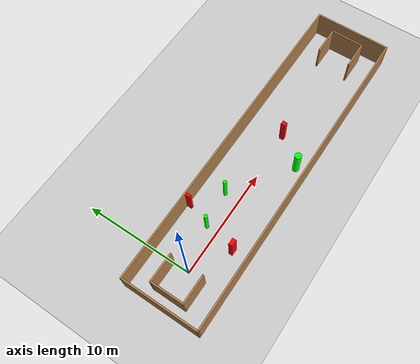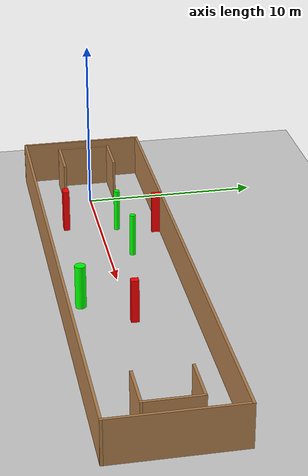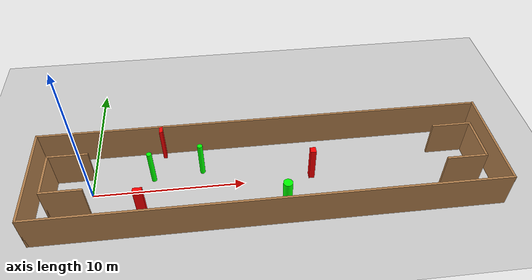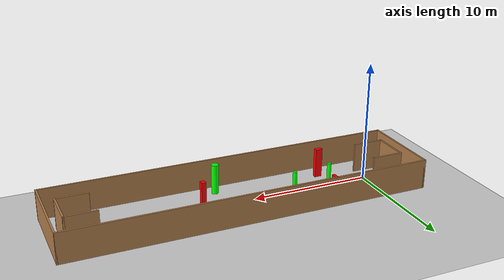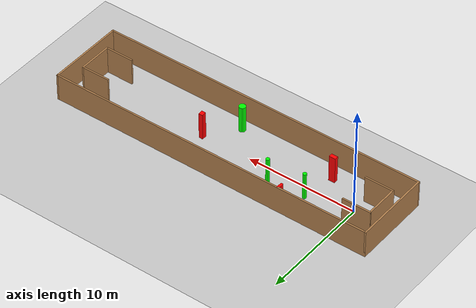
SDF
<sdf version="1.7">
 <world name="default">
  <light name="sun" type="directional">
   <pose>0 0 10 0 -0 0</pose>
   <diffuse>0.8 0.8 0.8 1</diffuse>
   <specular>0.2 0.2 0.2 1</specular>
   <attenuation>
    <range>1000</range>
    <constant>0.9</constant>
    <linear>0.01</linear>
    <quadratic>0.001</quadratic>
   </attenuation>
   <direction>-0.5 0.1 -0.9</direction>
   <spot><inner_angle>0</inner_angle><outer_angle>0</outer_angle><falloff>0</falloff></spot>
  </light>
  <model name="ground_plane">
   <static>1</static>
   <link name="link">
    <collision name="collision">
     <geometry><plane><normal>0 0 1</normal><size>100 100</size></plane></geometry>
     <surface>
      <contact><collide_bitmask>65535</collide_bitmask></contact>
      <friction><ode><mu>100</mu><mu2>50</mu2></ode></friction>
     </surface>
    </collision>
    <visual name="visual">
     <cast_shadows>0</cast_shadows>
     <geometry><plane><normal>0 0 1</normal><size>100 100</size></plane></geometry>
     <material>
      <script><uri>file://media/materials/scripts/gazebo.material</uri><name>Gazebo/Grey</name></script>
     </material>
    </visual>
   </link>
  </model>
  <gravity>0 0 -9.8</gravity>
  <magnetic_field>6e-06 2.3e-05 -4.2e-05</magnetic_field>
  <atmosphere type="adiabatic"/>
  <physics type="ode">
   <max_step_size>0.001</max_step_size>
   <real_time_factor>1</real_time_factor>
   <real_time_update_rate>1000</real_time_update_rate>
  </physics>
  <scene><ambient>0.4 0.4 0.4 1</ambient><background>0.7 0.7 0.7 1</background><shadows>1</shadows></scene>
  <spherical_coordinates>
   <surface_model>EARTH_WGS84</surface_model>
   <latitude_deg>0</latitude_deg>
   <longitude_deg>0</longitude_deg>
   <elevation>0</elevation>
   <heading_deg>0</heading_deg>
  </spherical_coordinates>
  <model name="my_base_walls">
   <link name="Wall_0">
    <collision name="Wall_0_Collision">
     <geometry><box><size>7.15 0.15 2.5</size></box></geometry>
     <pose>0 0 1.25 0 -0 0</pose>
    </collision>
    <visual name="Wall_0_Visual">
     <pose>0 0 1.25 0 -0 0</pose>
     <geometry><box><size>7.15 0.15 2.5</size></box></geometry>
     <material>
      <script><uri>file://media/materials/scripts/gazebo.material</uri><name>Gazebo/Wood</name></script>
      <ambient>1 1 1 1</ambient>
     </material>
     <meta><layer>0</layer></meta>
    </visual>
    <pose>-15 0 0 0 -0 1.5708</pose>
   </link>
   <link name="Wall_10">
    <collision name="Wall_10_Collision">
     <geometry><box><size>2.65 0.15 2.5</size></box></geometry>
     <pose>0 0 1.25 0 -0 0</pose>
    </collision>
    <visual name="Wall_10_Visual">
     <pose>0 0 1.25 0 -0 0</pose>
     <geometry><box><size>2.65 0.15 2.5</size></box></geometry>
     <material>
      <script><uri>file://media/materials/scripts/gazebo.material</uri><name>Gazebo/Wood</name></script>
      <ambient>1 1 1 1</ambient>
     </material>
     <meta><layer>0</layer></meta>
    </visual>
    <pose>-12.75 -1.5 0 0 -0 0</pose>
   </link>
   <link name="Wall_12">
    <collision name="Wall_12_Collision">
     <geometry><box><size>2.65 0.15 2.5</size></box></geometry>
     <pose>0 0 1.25 0 -0 0</pose>
    </collision>
    <visual name="Wall_12_Visual">
     <pose>0 0 1.25 0 -0 0</pose>
     <geometry><box><size>2.65 0.15 2.5</size></box></geometry>
     <material>
      <script><uri>file://media/materials/scripts/gazebo.material</uri><name>Gazebo/Wood</name></script>
      <ambient>1 1 1 1</ambient>
     </material>
     <meta><layer>0</layer></meta>
    </visual>
    <pose>-12.75 1.5 0 0 -0 0</pose>
   </link>
   <link name="Wall_14">
    <collision name="Wall_14_Collision">
     <geometry><box><size>3.15 0.15 2.5</size></box></geometry>
     <pose>0 0 1.25 0 -0 0</pose>
    </collision>
    <visual name="Wall_14_Visual">
     <pose>0 0 1.25 0 -0 0</pose>
     <geometry><box><size>3.15 0.15 2.5</size></box></geometry>
     <material>
      <script><uri>file://media/materials/scripts/gazebo.material</uri><name>Gazebo/Wood</name></script>
      <ambient>1 1 1 1</ambient>
     </material>
     <meta><layer>0</layer></meta>
    </visual>
    <pose>14 0 0 0 -0 -1.5708</pose>
   </link>
   <link name="Wall_15">
    <collision name="Wall_15_Collision">
     <geometry><box><size>2.65 0.15 2.5</size></box></geometry>
     <pose>0 0 1.25 0 -0 0</pose>
    </collision>
    <visual name="Wall_15_Visual">
     <pose>0 0 1.25 0 -0 0</pose>
     <geometry><box><size>2.65 0.15 2.5</size></box></geometry>
     <material>
      <script><uri>file://media/materials/scripts/gazebo.material</uri><name>Gazebo/Wood</name></script>
      <ambient>1 1 1 1</ambient>
     </material>
     <meta><layer>0</layer></meta>
    </visual>
    <pose>12.75 -1.5 0 0 -0 3.14159</pose>
   </link>
   <link name="Wall_17">
    <collision name="Wall_17_Collision">
     <geometry><box><size>2.65 0.15 2.5</size></box></geometry>
     <pose>0 0 1.25 0 -0 0</pose>
    </collision>
    <visual name="Wall_17_Visual">
     <pose>0 0 1.25 0 -0 0</pose>
     <geometry><box><size>2.65 0.15 2.5</size></box></geometry>
     <material>
      <script><uri>file://media/materials/scripts/gazebo.material</uri><name>Gazebo/Wood</name></script>
      <ambient>1 1 1 1</ambient>
     </material>
     <meta><layer>0</layer></meta>
    </visual>
    <pose>12.75 1.5 0 0 -0 3.14159</pose>
   </link>
   <link name="Wall_2">
    <collision name="Wall_2_Collision">
     <geometry><box><size>30.15 0.15 2.5</size></box></geometry>
     <pose>0 0 1.25 0 -0 0</pose>
    </collision>
    <visual name="Wall_2_Visual">
     <pose>0 0 1.25 0 -0 0</pose>
     <geometry><box><size>30.15 0.15 2.5</size></box></geometry>
     <material>
      <script><uri>file://media/materials/scripts/gazebo.material</uri><name>Gazebo/Wood</name></script>
      <ambient>1 1 1 1</ambient>
     </material>
     <meta><layer>0</layer></meta>
    </visual>
    <pose>-0 -3.5 0 0 -0 0</pose>
   </link>
   <link name="Wall_4">
    <collision name="Wall_4_Collision">
     <geometry><box><size>30.15 0.15 2.5</size></box></geometry>
     <pose>0 0 1.25 0 -0 0</pose>
    </collision>
    <visual name="Wall_4_Visual">
     <pose>0 0 1.25 0 -0 0</pose>
     <geometry><box><size>30.15 0.15 2.5</size></box></geometry>
     <material>
      <script><uri>file://media/materials/scripts/gazebo.material</uri><name>Gazebo/Wood</name></script>
      <ambient>1 1 1 1</ambient>
     </material>
     <meta><layer>0</layer></meta>
    </visual>
    <pose>-0 3.5 0 0 -0 0</pose>
   </link>
   <link name="Wall_6">
    <collision name="Wall_6_Collision">
     <geometry><box><size>7.15 0.15 2.5</size></box></geometry>
     <pose>0 0 1.25 0 -0 0</pose>
    </collision>
    <visual name="Wall_6_Visual">
     <pose>0 0 1.25 0 -0 0</pose>
     <geometry><box><size>7.15 0.15 2.5</size></box></geometry>
     <material>
      <script><uri>file://media/materials/scripts/gazebo.material</uri><name>Gazebo/Wood</name></script>
      <ambient>1 1 1 1</ambient>
     </material>
     <meta><layer>0</layer></meta>
    </visual>
    <pose>15 0 0 0 -0 -1.5708</pose>
   </link>
   <link name="Wall_9">
    <collision name="Wall_9_Collision">
     <geometry><box><size>3.15 0.15 2.5</size></box></geometry>
     <pose>0 0 1.25 0 -0 0</pose>
    </collision>
    <visual name="Wall_9_Visual">
     <pose>0 0 1.25 0 -0 0</pose>
     <geometry><box><size>3.15 0.15 2.5</size></box></geometry>
     <material>
      <script><uri>file://media/materials/scripts/gazebo.material</uri><name>Gazebo/Wood</name></script>
      <ambient>1 1 1 1</ambient>
     </material>
     <meta><layer>0</layer></meta>
    </visual>
    <pose>-14 0 0 0 -0 -1.5708</pose>
   </link>
   <static>1</static>
   <pose>11.5 0 0 0 -0 0</pose>
  </model>
  <model name="cylinder1">
   <static>1</static>
   <link name="link">
    <inertial>
     <mass>1</mass>
     <inertia><ixx>0.5</ixx><ixy>0</ixy><ixz>0</ixz><iyy>0.5</iyy><iyz>0</iyz><izz>1</izz></inertia>
    </inertial>
    <collision name="collision">
     <geometry><cylinder><radius>0.30137718522836815</radius><length>2.5</length></cylinder></geometry>
    </collision>
    <visual name="visual">
     <geometry><cylinder><radius>0.30137718522836815</radius><length>2.5</length></cylinder></geometry>
     <material>
      <ambient>0 1 0 1</ambient>
      <diffuse>0 1 0 1</diffuse>
      <specular>0.1 0.1 0.1 1</specular>
      <emissive>0 0 0 0</emissive>
     </material>
    </visual>
   </link>
   <pose>12.516010003864983 -2.384428944733197 1.25 0 0 0</pose>
  </model>
  <model name="cylinder2">
   <static>1</static>
   <link name="link">
    <inertial>
     <mass>1</mass>
     <inertia><ixx>0.5</ixx><ixy>0</ixy><ixz>0</ixz><iyy>0.5</iyy><iyz>0</iyz><izz>1</izz></inertia>
    </inertial>
    <collision name="collision">
     <geometry><cylinder><radius>0.1718386487984075</radius><length>2.5</length></cylinder></geometry>
    </collision>
    <visual name="visual">
     <geometry><cylinder><radius>0.1718386487984075</radius><length>2.5</length></cylinder></geometry>
     <material>
      <ambient>0 1 0 1</ambient>
      <diffuse>0 1 0 1</diffuse>
      <specular>0.1 0.1 0.1 1</specular>
      <emissive>0 0 0 0</emissive>
     </material>
    </visual>
   </link>
   <pose>7.228399950191605 1.3742789475824306 1.25 0 0 0</pose>
  </model>
  <model name="cylinder3">
   <static>1</static>
   <link name="link">
    <inertial>
     <mass>1</mass>
     <inertia><ixx>0.5</ixx><ixy>0</ixy><ixz>0</ixz><iyy>0.5</iyy><iyz>0</iyz><izz>1</izz></inertia>
    </inertial>
    <collision name="collision">
     <geometry><cylinder><radius>0.16674807236730224</radius><length>2.5</length></cylinder></geometry>
    </collision>
    <visual name="visual">
     <geometry><cylinder><radius>0.16674807236730224</radius><length>2.5</length></cylinder></geometry>
     <material>
      <ambient>0 1 0 1</ambient>
      <diffuse>0 1 0 1</diffuse>
      <specular>0.1 0.1 0.1 1</specular>
      <emissive>0 0 0 0</emissive>
     </material>
    </visual>
   </link>
   <pose>3.965594398588143 1.0107824412730588 1.25 0 0 0</pose>
  </model>
  <model name="box1">
   <static>1</static>
   <link name="link">
    <inertial>
     <mass>1</mass>
     <inertia><ixx>0.083</ixx><ixy>0</ixy><ixz>0</ixz><iyy>0.083</iyy><iyz>0</iyz><izz>0.083</izz></inertia>
    </inertial>
    <collision name="collision">
     <geometry><box><size>0.22294664442176448 0.5637744038930013 2.5</size></box></geometry>
    </collision>
    <visual name="visual">
     <geometry><box><size>0.22294664442176448 0.5637744038930013 2.5</size></box></geometry>
     <material>
      <ambient>1 0 0 1</ambient>
      <diffuse>1 0 0 1</diffuse>
      <specular>0.1 0.1 0.1 1</specular>
      <emissive>0 0 0 0</emissive>
     </material>
    </visual>
    <sensor name="my_contact" type="contact">
     <contact><collision>box_collision</collision><topic>__default_topic__</topic></contact>
    </sensor>
   </link>
   <pose>4.676436283746218 3.238883367325003 1.25 0 0 0</pose>
  </model>
  <model name="box2">
   <static>1</static>
   <link name="link">
    <inertial>
     <mass>1</mass>
     <inertia><ixx>0.083</ixx><ixy>0</ixy><ixz>0</ixz><iyy>0.083</iyy><iyz>0</iyz><izz>0.083</izz></inertia>
    </inertial>
    <collision name="collision">
     <geometry><box><size>0.3716125173307109 0.4288577710804478 2.5</size></box></geometry>
    </collision>
    <visual name="visual">
     <geometry><box><size>0.3716125173307109 0.4288577710804478 2.5</size></box></geometry>
     <material>
      <ambient>1 0 0 1</ambient>
      <diffuse>1 0 0 1</diffuse>
      <specular>0.1 0.1 0.1 1</specular>
      <emissive>0 0 0 0</emissive>
     </material>
    </visual>
    <sensor name="my_contact" type="contact">
     <contact><collision>box_collision</collision><topic>__default_topic__</topic></contact>
    </sensor>
   </link>
   <pose>14.514157414590812 0.19220955572546394 1.25 0 0 0</pose>
  </model>
  <model name="box3">
   <static>1</static>
   <link name="link">
    <inertial>
     <mass>1</mass>
     <inertia><ixx>0.083</ixx><ixy>0</ixy><ixz>0</ixz><iyy>0.083</iyy><iyz>0</iyz><izz>0.083</izz></inertia>
    </inertial>
    <collision name="collision">
     <geometry><box><size>0.5867396214575028 0.35494894960461026 2.5</size></box></geometry>
    </collision>
    <visual name="visual">
     <geometry><box><size>0.5867396214575028 0.35494894960461026 2.5</size></box></geometry>
     <material>
      <ambient>1 0 0 1</ambient>
      <diffuse>1 0 0 1</diffuse>
      <specular>0.1 0.1 0.1 1</specular>
      <emissive>0 0 0 0</emissive>
     </material>
    </visual>
    <sensor name="my_contact" type="contact">
     <contact><collision>box_collision</collision><topic>__default_topic__</topic></contact>
    </sensor>
   </link>
   <pose>3.3590756132056097 -1.9151634540097437 1.25 0 0 0</pose>
  </model>
 </world>
</sdf>
